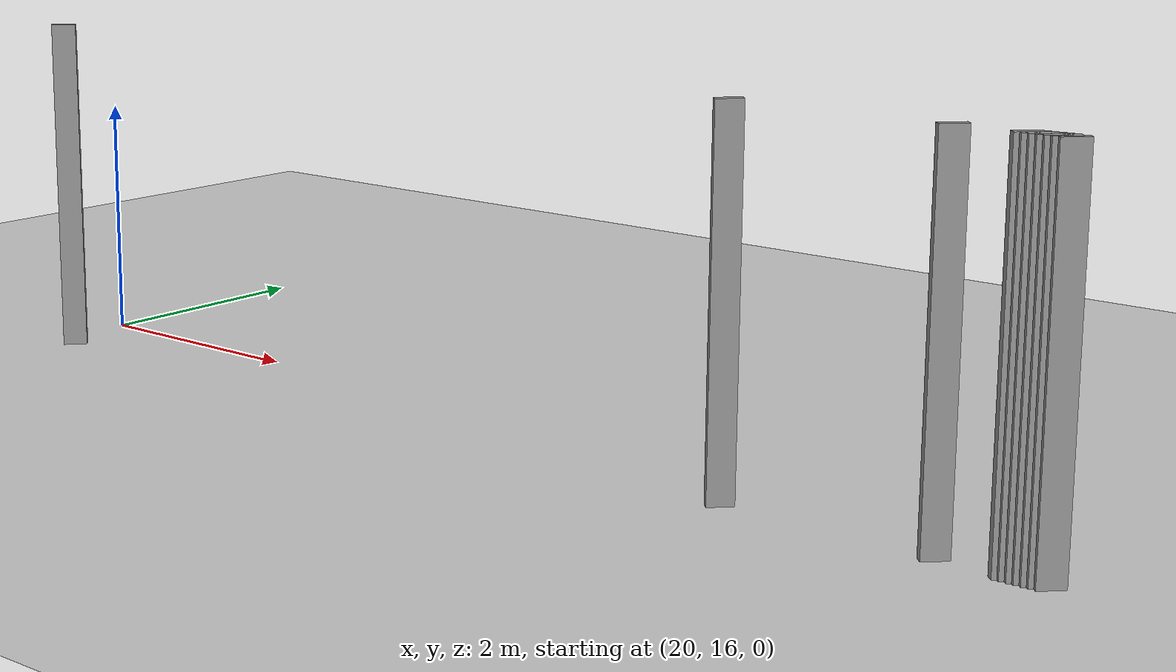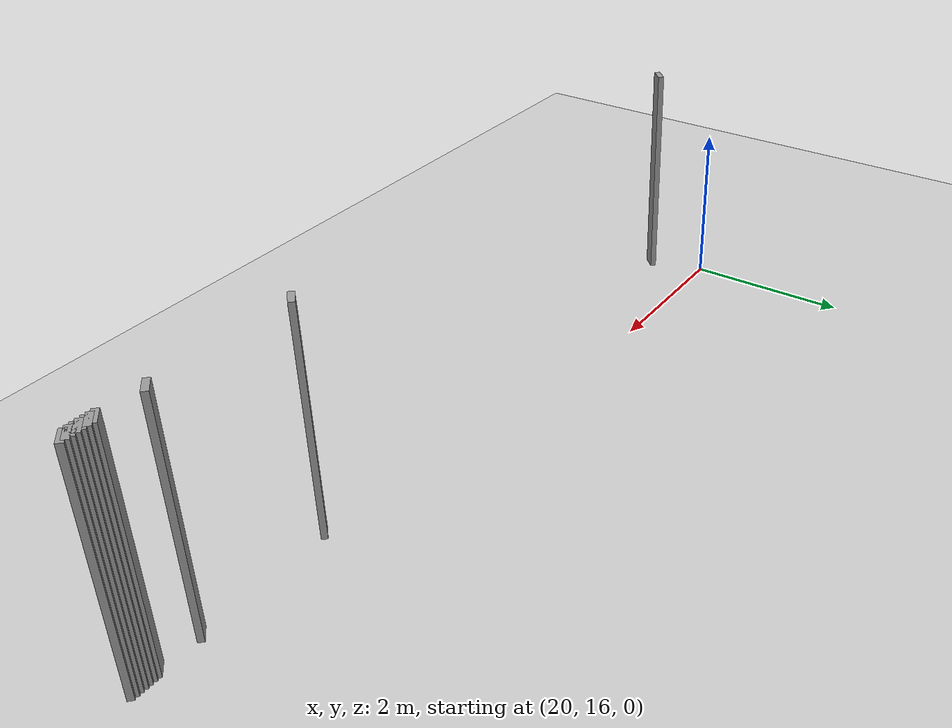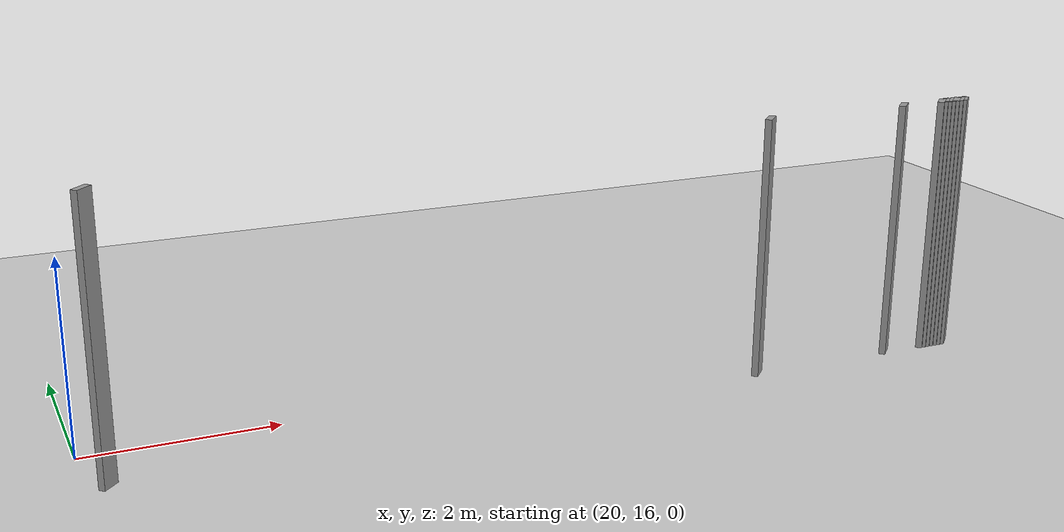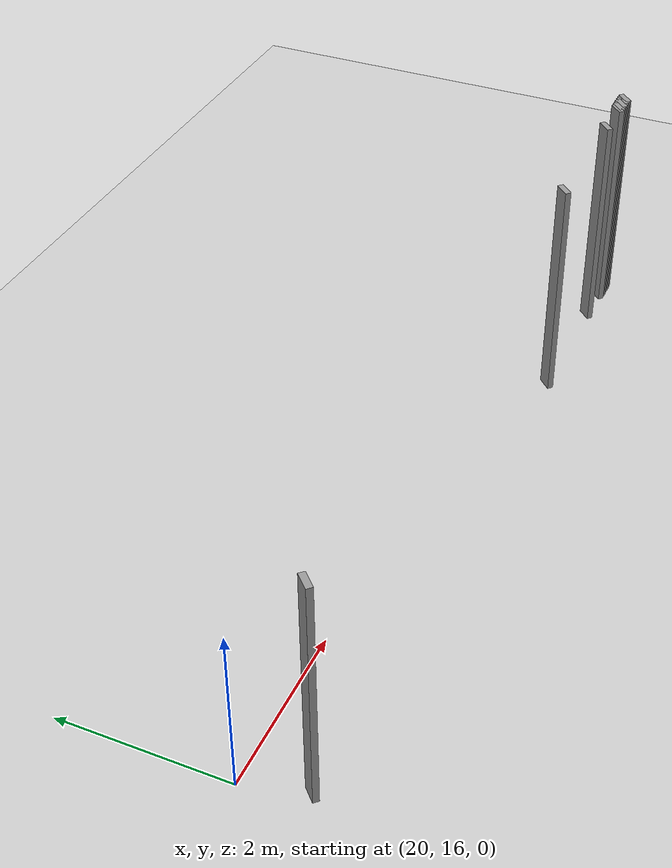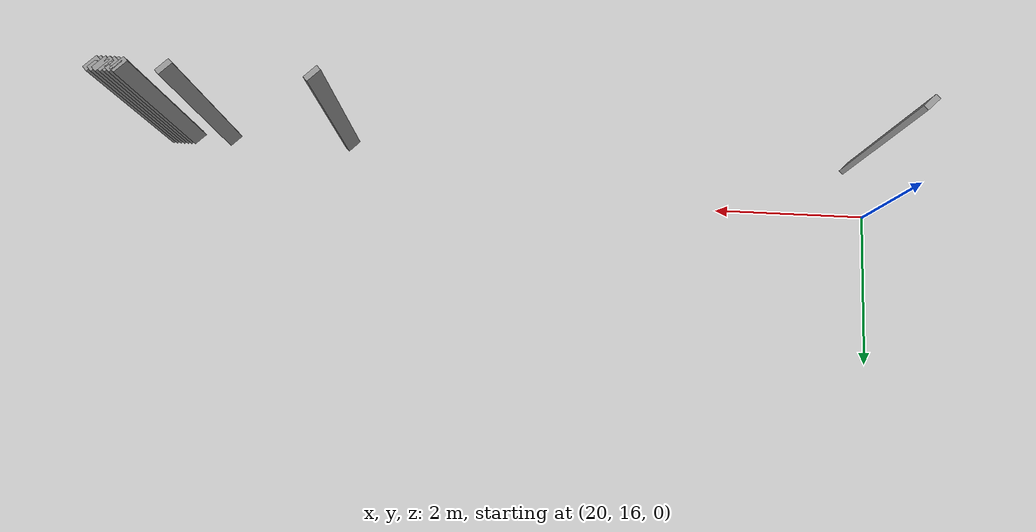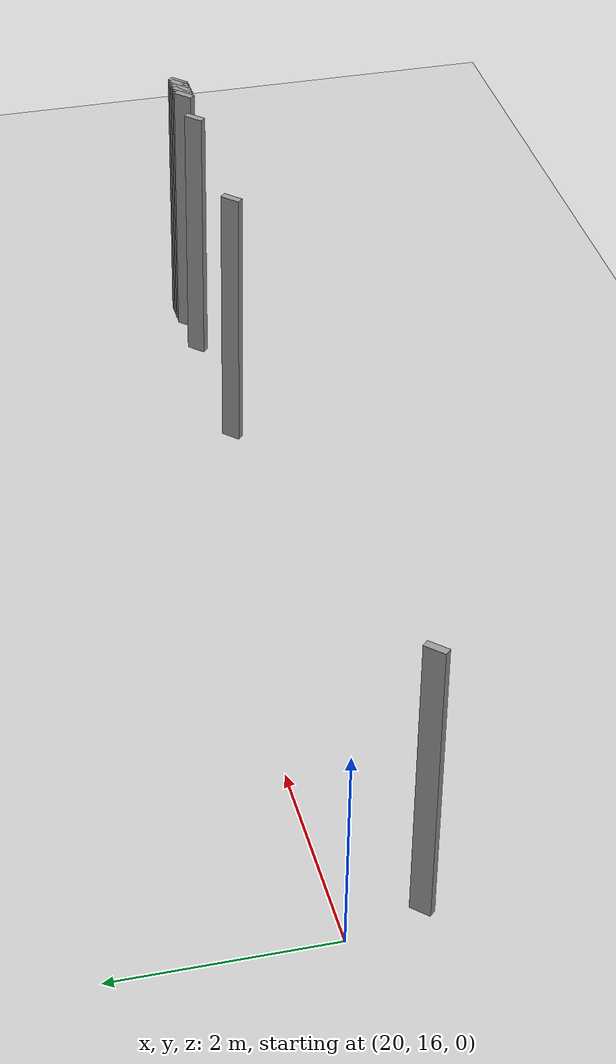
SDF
<sdf version="1.5">
 <world name="default">
  <include><uri>model://ground_plane</uri></include>
  <include><uri>model://sun</uri></include>
  <model name="grey_wall_1408">
   <static>1</static>
   <link name="link">
    <pose>20.2 15.3  1.4 0 0 -0.785398163397</pose>
    <collision name="collision"><geometry><box><size>0.0707106781187 .2  2.8</size></box></geometry></collision>
    <visual name="visual">
     <cast_shadows>0</cast_shadows>
     <geometry><box><size>0.0707106781187 .2  2.8</size></box></geometry>
     <material>
      <script>
       <uri>model://grey_wall/materials/scripts</uri>
       <uri>model://grey_wall/materials/textures</uri>
       <name>vrc/grey_wall</name>
      </script>
     </material>
    </visual>
   </link>
  </model>
  <model name="grey_wall_1409">
   <static>1</static>
   <link name="link">
    <pose>27.05 15.3  1.4 0 0 -0.785398163397</pose>
    <collision name="collision"><geometry><box><size>0.0707106781187 .2  2.8</size></box></geometry></collision>
    <visual name="visual">
     <cast_shadows>0</cast_shadows>
     <geometry><box><size>0.0707106781187 .2  2.8</size></box></geometry>
     <material>
      <script>
       <uri>model://grey_wall/materials/scripts</uri>
       <uri>model://grey_wall/materials/textures</uri>
       <name>vrc/grey_wall</name>
      </script>
     </material>
    </visual>
   </link>
  </model>
  <model name="grey_wall_1410">
   <static>1</static>
   <link name="link">
    <pose>28.7 15.3  1.4 0 0 -0.785398163397</pose>
    <collision name="collision"><geometry><box><size>0.0707106781187 .2  2.8</size></box></geometry></collision>
    <visual name="visual">
     <cast_shadows>0</cast_shadows>
     <geometry><box><size>0.0707106781187 .2  2.8</size></box></geometry>
     <material>
      <script>
       <uri>model://grey_wall/materials/scripts</uri>
       <uri>model://grey_wall/materials/textures</uri>
       <name>vrc/grey_wall</name>
      </script>
     </material>
    </visual>
   </link>
  </model>
  <model name="grey_wall_1411">
   <static>1</static>
   <link name="link">
    <pose>29.2 15.3  1.4 0 0 -0.785398163397</pose>
    <collision name="collision"><geometry><box><size>0.0707106781187 .2  2.8</size></box></geometry></collision>
    <visual name="visual">
     <cast_shadows>0</cast_shadows>
     <geometry><box><size>0.0707106781187 .2  2.8</size></box></geometry>
     <material>
      <script>
       <uri>model://grey_wall/materials/scripts</uri>
       <uri>model://grey_wall/materials/textures</uri>
       <name>vrc/grey_wall</name>
      </script>
     </material>
    </visual>
   </link>
  </model>
  <model name="grey_wall_1412">
   <static>1</static>
   <link name="link">
    <pose>29.25 15.3  1.4 0 0 -0.785398163397</pose>
    <collision name="collision"><geometry><box><size>0.0707106781187 .2  2.8</size></box></geometry></collision>
    <visual name="visual">
     <cast_shadows>0</cast_shadows>
     <geometry><box><size>0.0707106781187 .2  2.8</size></box></geometry>
     <material>
      <script>
       <uri>model://grey_wall/materials/scripts</uri>
       <uri>model://grey_wall/materials/textures</uri>
       <name>vrc/grey_wall</name>
      </script>
     </material>
    </visual>
   </link>
  </model>
  <model name="grey_wall_1413">
   <static>1</static>
   <link name="link">
    <pose>29.3 15.3  1.4 0 0 -0.785398163397</pose>
    <collision name="collision"><geometry><box><size>0.0707106781187 .2  2.8</size></box></geometry></collision>
    <visual name="visual">
     <cast_shadows>0</cast_shadows>
     <geometry><box><size>0.0707106781187 .2  2.8</size></box></geometry>
     <material>
      <script>
       <uri>model://grey_wall/materials/scripts</uri>
       <uri>model://grey_wall/materials/textures</uri>
       <name>vrc/grey_wall</name>
      </script>
     </material>
    </visual>
   </link>
  </model>
  <model name="grey_wall_1414">
   <static>1</static>
   <link name="link">
    <pose>29.35 15.3  1.4 0 0 -0.785398163397</pose>
    <collision name="collision"><geometry><box><size>0.0707106781187 .2  2.8</size></box></geometry></collision>
    <visual name="visual">
     <cast_shadows>0</cast_shadows>
     <geometry><box><size>0.0707106781187 .2  2.8</size></box></geometry>
     <material>
      <script>
       <uri>model://grey_wall/materials/scripts</uri>
       <uri>model://grey_wall/materials/textures</uri>
       <name>vrc/grey_wall</name>
      </script>
     </material>
    </visual>
   </link>
  </model>
  <model name="grey_wall_1415">
   <static>1</static>
   <link name="link">
    <pose>29.4 15.3  1.4 0 0 -0.785398163397</pose>
    <collision name="collision"><geometry><box><size>0.0707106781187 .2  2.8</size></box></geometry></collision>
    <visual name="visual">
     <cast_shadows>0</cast_shadows>
     <geometry><box><size>0.0707106781187 .2  2.8</size></box></geometry>
     <material>
      <script>
       <uri>model://grey_wall/materials/scripts</uri>
       <uri>model://grey_wall/materials/textures</uri>
       <name>vrc/grey_wall</name>
      </script>
     </material>
    </visual>
   </link>
  </model>
  <model name="grey_wall_1416">
   <static>1</static>
   <link name="link">
    <pose>29.45 15.3  1.4 0 0 -0.785398163397</pose>
    <collision name="collision"><geometry><box><size>0.0707106781187 .2  2.8</size></box></geometry></collision>
    <visual name="visual">
     <cast_shadows>0</cast_shadows>
     <geometry><box><size>0.0707106781187 .2  2.8</size></box></geometry>
     <material>
      <script>
       <uri>model://grey_wall/materials/scripts</uri>
       <uri>model://grey_wall/materials/textures</uri>
       <name>vrc/grey_wall</name>
      </script>
     </material>
    </visual>
   </link>
  </model>
  <model name="grey_wall_1417">
   <static>1</static>
   <link name="link">
    <pose>29.5 15.3  1.4 0 0 -0.785398163397</pose>
    <collision name="collision"><geometry><box><size>0.0707106781187 .2  2.8</size></box></geometry></collision>
    <visual name="visual">
     <cast_shadows>0</cast_shadows>
     <geometry><box><size>0.0707106781187 .2  2.8</size></box></geometry>
     <material>
      <script>
       <uri>model://grey_wall/materials/scripts</uri>
       <uri>model://grey_wall/materials/textures</uri>
       <name>vrc/grey_wall</name>
      </script>
     </material>
    </visual>
   </link>
  </model>
 </world>
</sdf>
